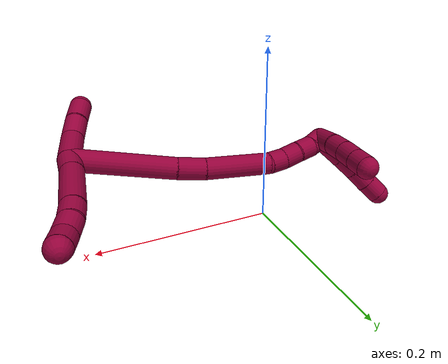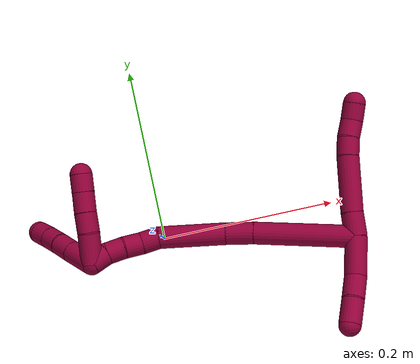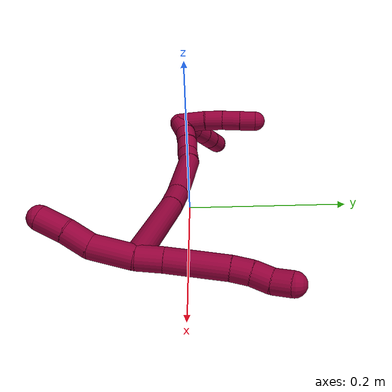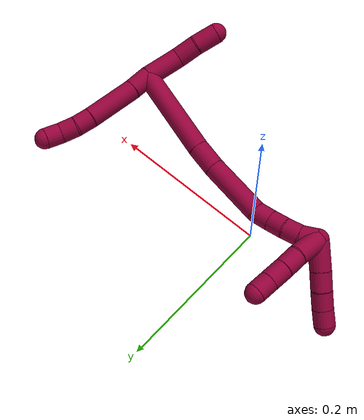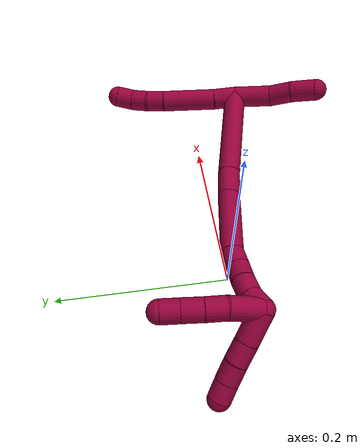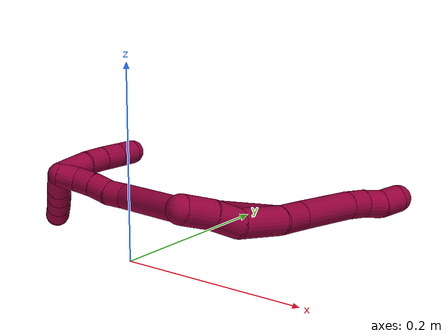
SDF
<sdf version="1.7">
 <world name="default">
  <model name="8">
   <static>0</static>
   <link name="8">
    <collision name="collision-cylinder-e_1_2_8">
     <pose>-3e-06 -0.00117 -0.013253 3.05351 -0.00019 -0.004322</pose>
     <geometry><cylinder><radius>0.0125</radius><length>0.02661</length></cylinder></geometry>
     <surface>
      <friction><ode><mu>1.16</mu><mu2>1.16</mu2><slip1>0</slip1><slip2>0</slip2></ode></friction>
      <contact><ode><kp>1e+06</kp><kd>1</kd><max_vel>0</max_vel><min_depth>0.001</min_depth></ode></contact>
     </surface>
    </collision>
    <visual name="visual-cylinder-e_1_2_8">
     <pose>-3e-06 -0.00117 -0.013253 3.05351 -0.00019 -0.004322</pose>
     <geometry><cylinder><radius>0.0125</radius><length>0.02661</length></cylinder></geometry>
     <material><ambient>0.584314 0 0.227451 1</ambient></material>
    </visual>
    <collision name="collision-cylinder-e_2_8_9">
     <pose>0.002755 -0.005136 -0.057612 3.05198 0.088147 1.55428</pose>
     <geometry><cylinder><radius>0.0125</radius><length>0.062705</length></cylinder></geometry>
     <surface>
      <friction><ode><mu>1.16</mu><mu2>1.16</mu2><slip1>0</slip1><slip2>0</slip2></ode></friction>
      <contact><ode><kp>1e+06</kp><kd>1</kd><max_vel>0</max_vel><min_depth>0.001</min_depth></ode></contact>
     </surface>
    </collision>
    <visual name="visual-cylinder-e_2_8_9">
     <pose>0.002755 -0.005136 -0.057612 3.05198 0.088147 1.55428</pose>
     <geometry><cylinder><radius>0.0125</radius><length>0.062705</length></cylinder></geometry>
     <material><ambient>0.584314 0 0.227451 1</ambient></material>
    </visual>
    <collision name="collision-cylinder-e_3_9_10">
     <pose>0.007319 -0.009412 -0.098617 2.9931 0.178292 1.75349</pose>
     <geometry><cylinder><radius>0.0125</radius><length>0.020341</length></cylinder></geometry>
     <surface>
      <friction><ode><mu>1.16</mu><mu2>1.16</mu2><slip1>0</slip1><slip2>0</slip2></ode></friction>
      <contact><ode><kp>1e+06</kp><kd>1</kd><max_vel>0</max_vel><min_depth>0.001</min_depth></ode></contact>
     </surface>
    </collision>
    <visual name="visual-cylinder-e_3_9_10">
     <pose>0.007319 -0.009412 -0.098617 2.9931 0.178292 1.75349</pose>
     <geometry><cylinder><radius>0.0125</radius><length>0.020341</length></cylinder></geometry>
     <material><ambient>0.584314 0 0.227451 1</ambient></material>
    </visual>
    <collision name="collision-cylinder-e_4_10_11">
     <pose>0.012401 -0.013329 -0.117743 2.8834 0.330955 1.82006</pose>
     <geometry><cylinder><radius>0.0125</radius><length>0.02018</length></cylinder></geometry>
     <surface>
      <friction><ode><mu>1.16</mu><mu2>1.16</mu2><slip1>0</slip1><slip2>0</slip2></ode></friction>
      <contact><ode><kp>1e+06</kp><kd>1</kd><max_vel>0</max_vel><min_depth>0.001</min_depth></ode></contact>
     </surface>
    </collision>
    <visual name="visual-cylinder-e_4_10_11">
     <pose>0.012401 -0.013329 -0.117743 2.8834 0.330955 1.82006</pose>
     <geometry><cylinder><radius>0.0125</radius><length>0.02018</length></cylinder></geometry>
     <material><ambient>0.584314 0 0.227451 1</ambient></material>
    </visual>
    <collision name="collision-cylinder-e_5_11_6">
     <pose>0.01882 -0.015468 -0.136545 -3.1105 0.316658 -2.94749</pose>
     <geometry><cylinder><radius>0.0125</radius><length>0.020163</length></cylinder></geometry>
     <surface>
      <friction><ode><mu>1.16</mu><mu2>1.16</mu2><slip1>0</slip1><slip2>0</slip2></ode></friction>
      <contact><ode><kp>1e+06</kp><kd>1</kd><max_vel>0</max_vel><min_depth>0.001</min_depth></ode></contact>
     </surface>
    </collision>
    <visual name="visual-cylinder-e_5_11_6">
     <pose>0.01882 -0.015468 -0.136545 -3.1105 0.316658 -2.94749</pose>
     <geometry><cylinder><radius>0.0125</radius><length>0.020163</length></cylinder></geometry>
     <material><ambient>0.584314 0 0.227451 1</ambient></material>
    </visual>
    <collision name="collision-cylinder-e_1_2_12">
     <pose>-0.003577 0.003973 0.021495 -0.182792 -0.162205 0.014899</pose>
     <geometry><cylinder><radius>0.0125</radius><length>0.044299</length></cylinder></geometry>
     <surface>
      <friction><ode><mu>1.16</mu><mu2>1.16</mu2><slip1>0</slip1><slip2>0</slip2></ode></friction>
      <contact><ode><kp>1e+06</kp><kd>1</kd><max_vel>0</max_vel><min_depth>0.001</min_depth></ode></contact>
     </surface>
    </collision>
    <visual name="visual-cylinder-e_1_2_12">
     <pose>-0.003577 0.003973 0.021495 -0.182792 -0.162205 0.014899</pose>
     <geometry><cylinder><radius>0.0125</radius><length>0.044299</length></cylinder></geometry>
     <material><ambient>0.584314 0 0.227451 1</ambient></material>
    </visual>
    <collision name="collision-cylinder-e_2_12_13">
     <pose>-0.009874 0.014555 0.054544 -0.519511 -0.201575 0.05374</pose>
     <geometry><cylinder><radius>0.0125</radius><length>0.027171</length></cylinder></geometry>
     <surface>
      <friction><ode><mu>1.16</mu><mu2>1.16</mu2><slip1>0</slip1><slip2>0</slip2></ode></friction>
      <contact><ode><kp>1e+06</kp><kd>1</kd><max_vel>0</max_vel><min_depth>0.001</min_depth></ode></contact>
     </surface>
    </collision>
    <visual name="visual-cylinder-e_2_12_13">
     <pose>-0.009874 0.014555 0.054544 -0.519511 -0.201575 0.05374</pose>
     <geometry><cylinder><radius>0.0125</radius><length>0.027171</length></cylinder></geometry>
     <material><ambient>0.584314 0 0.227451 1</ambient></material>
    </visual>
    <collision name="collision-cylinder-e_3_13_5">
     <pose>-0.016062 0.026323 0.078937 -0.382113 -0.245591 0.047732</pose>
     <geometry><cylinder><radius>0.0125</radius><length>0.028529</length></cylinder></geometry>
     <surface>
      <friction><ode><mu>1.16</mu><mu2>1.16</mu2><slip1>0</slip1><slip2>0</slip2></ode></friction>
      <contact><ode><kp>1e+06</kp><kd>1</kd><max_vel>0</max_vel><min_depth>0.001</min_depth></ode></contact>
     </surface>
    </collision>
    <visual name="visual-cylinder-e_3_13_5">
     <pose>-0.016062 0.026323 0.078937 -0.382113 -0.245591 0.047732</pose>
     <geometry><cylinder><radius>0.0125</radius><length>0.028529</length></cylinder></geometry>
     <material><ambient>0.584314 0 0.227451 1</ambient></material>
    </visual>
    <collision name="collision-cylinder-e_1_2_14">
     <pose>-0.055003 0.002583 -0.011063 -2.91224 -1.36712 2.86065</pose>
     <geometry><cylinder><radius>0.0125</radius><length>0.112329</length></cylinder></geometry>
     <surface>
      <friction><ode><mu>1.16</mu><mu2>1.16</mu2><slip1>0</slip1><slip2>0</slip2></ode></friction>
      <contact><ode><kp>1e+06</kp><kd>1</kd><max_vel>0</max_vel><min_depth>0.001</min_depth></ode></contact>
     </surface>
    </collision>
    <visual name="visual-cylinder-e_1_2_14">
     <pose>-0.055003 0.002583 -0.011063 -2.91224 -1.36712 2.86065</pose>
     <geometry><cylinder><radius>0.0125</radius><length>0.112329</length></cylinder></geometry>
     <material><ambient>0.584314 0 0.227451 1</ambient></material>
    </visual>
    <collision name="collision-cylinder-e_2_14_15">
     <pose>-0.125644 0.006556 -0.024359 -2.58467 -1.40413 2.48971</pose>
     <geometry><cylinder><radius>0.0125</radius><length>0.031713</length></cylinder></geometry>
     <surface>
      <friction><ode><mu>1.16</mu><mu2>1.16</mu2><slip1>0</slip1><slip2>0</slip2></ode></friction>
      <contact><ode><kp>1e+06</kp><kd>1</kd><max_vel>0</max_vel><min_depth>0.001</min_depth></ode></contact>
     </surface>
    </collision>
    <visual name="visual-cylinder-e_2_14_15">
     <pose>-0.125644 0.006556 -0.024359 -2.58467 -1.40413 2.48971</pose>
     <geometry><cylinder><radius>0.0125</radius><length>0.031713</length></cylinder></geometry>
     <material><ambient>0.584314 0 0.227451 1</ambient></material>
    </visual>
    <collision name="collision-cylinder-e_3_15_16">
     <pose>-0.177961 0.01482 -0.030519 -2.08982 -1.35825 1.89483</pose>
     <geometry><cylinder><radius>0.0125</radius><length>0.075049</length></cylinder></geometry>
     <surface>
      <friction><ode><mu>1.16</mu><mu2>1.16</mu2><slip1>0</slip1><slip2>0</slip2></ode></friction>
      <contact><ode><kp>1e+06</kp><kd>1</kd><max_vel>0</max_vel><min_depth>0.001</min_depth></ode></contact>
     </surface>
    </collision>
    <visual name="visual-cylinder-e_3_15_16">
     <pose>-0.177961 0.01482 -0.030519 -2.08982 -1.35825 1.89483</pose>
     <geometry><cylinder><radius>0.0125</radius><length>0.075049</length></cylinder></geometry>
     <material><ambient>0.584314 0 0.227451 1</ambient></material>
    </visual>
    <collision name="collision-cylinder-e_4_16_17">
     <pose>-0.224265 0.024307 -0.03287 -1.02829 -1.26374 0.784066</pose>
     <geometry><cylinder><radius>0.0125</radius><length>0.020192</length></cylinder></geometry>
     <surface>
      <friction><ode><mu>1.16</mu><mu2>1.16</mu2><slip1>0</slip1><slip2>0</slip2></ode></friction>
      <contact><ode><kp>1e+06</kp><kd>1</kd><max_vel>0</max_vel><min_depth>0.001</min_depth></ode></contact>
     </surface>
    </collision>
    <visual name="visual-cylinder-e_4_16_17">
     <pose>-0.224265 0.024307 -0.03287 -1.02829 -1.26374 0.784066</pose>
     <geometry><cylinder><radius>0.0125</radius><length>0.020192</length></cylinder></geometry>
     <material><ambient>0.584314 0 0.227451 1</ambient></material>
    </visual>
    <collision name="collision-cylinder-e_5_17_18">
     <pose>-0.243064 0.031504 -0.030477 -1.39424 -1.10115 0.949664</pose>
     <geometry><cylinder><radius>0.0125</radius><length>0.020579</length></cylinder></geometry>
     <surface>
      <friction><ode><mu>1.16</mu><mu2>1.16</mu2><slip1>0</slip1><slip2>0</slip2></ode></friction>
      <contact><ode><kp>1e+06</kp><kd>1</kd><max_vel>0</max_vel><min_depth>0.001</min_depth></ode></contact>
     </surface>
    </collision>
    <visual name="visual-cylinder-e_5_17_18">
     <pose>-0.243064 0.031504 -0.030477 -1.39424 -1.10115 0.949664</pose>
     <geometry><cylinder><radius>0.0125</radius><length>0.020579</length></cylinder></geometry>
     <material><ambient>0.584314 0 0.227451 1</ambient></material>
    </visual>
    <collision name="collision-cylinder-e_6_18_19">
     <pose>-0.261407 0.039781 -0.027899 -1.12601 -1.15113 0.777365</pose>
     <geometry><cylinder><radius>0.0125</radius><length>0.020077</length></cylinder></geometry>
     <surface>
      <friction><ode><mu>1.16</mu><mu2>1.16</mu2><slip1>0</slip1><slip2>0</slip2></ode></friction>
      <contact><ode><kp>1e+06</kp><kd>1</kd><max_vel>0</max_vel><min_depth>0.001</min_depth></ode></contact>
     </surface>
    </collision>
    <visual name="visual-cylinder-e_6_18_19">
     <pose>-0.261407 0.039781 -0.027899 -1.12601 -1.15113 0.777365</pose>
     <geometry><cylinder><radius>0.0125</radius><length>0.020077</length></cylinder></geometry>
     <material><ambient>0.584314 0 0.227451 1</ambient></material>
    </visual>
    <collision name="collision-cylinder-e_7_19_1">
     <pose>-0.278761 0.047443 -0.021916 -0.754542 -0.954785 0.404362</pose>
     <geometry><cylinder><radius>0.0125</radius><length>0.020061</length></cylinder></geometry>
     <surface>
      <friction><ode><mu>1.16</mu><mu2>1.16</mu2><slip1>0</slip1><slip2>0</slip2></ode></friction>
      <contact><ode><kp>1e+06</kp><kd>1</kd><max_vel>0</max_vel><min_depth>0.001</min_depth></ode></contact>
     </surface>
    </collision>
    <visual name="visual-cylinder-e_7_19_1">
     <pose>-0.278761 0.047443 -0.021916 -0.754542 -0.954785 0.404362</pose>
     <geometry><cylinder><radius>0.0125</radius><length>0.020061</length></cylinder></geometry>
     <material><ambient>0.584314 0 0.227451 1</ambient></material>
    </visual>
    <collision name="collision-cylinder-e_1_1_20">
     <pose>-0.285345 0.053682 -0.034744 -3.00925 0.092924 -1.22365</pose>
     <geometry><cylinder><radius>0.0125</radius><length>0.034551</length></cylinder></geometry>
     <surface>
      <friction><ode><mu>1.16</mu><mu2>1.16</mu2><slip1>0</slip1><slip2>0</slip2></ode></friction>
      <contact><ode><kp>1e+06</kp><kd>1</kd><max_vel>0</max_vel><min_depth>0.001</min_depth></ode></contact>
     </surface>
    </collision>
    <visual name="visual-cylinder-e_1_1_20">
     <pose>-0.285345 0.053682 -0.034744 -3.00925 0.092924 -1.22365</pose>
     <geometry><cylinder><radius>0.0125</radius><length>0.034551</length></cylinder></geometry>
     <material><ambient>0.584314 0 0.227451 1</ambient></material>
    </visual>
    <collision name="collision-cylinder-e_2_20_21">
     <pose>-0.283689 0.056154 -0.063085 -3.12367 0.004639 -0.506581</pose>
     <geometry><cylinder><radius>0.0125</radius><length>0.022585</length></cylinder></geometry>
     <surface>
      <friction><ode><mu>1.16</mu><mu2>1.16</mu2><slip1>0</slip1><slip2>0</slip2></ode></friction>
      <contact><ode><kp>1e+06</kp><kd>1</kd><max_vel>0</max_vel><min_depth>0.001</min_depth></ode></contact>
     </surface>
    </collision>
    <visual name="visual-cylinder-e_2_20_21">
     <pose>-0.283689 0.056154 -0.063085 -3.12367 0.004639 -0.506581</pose>
     <geometry><cylinder><radius>0.0125</radius><length>0.022585</length></cylinder></geometry>
     <material><ambient>0.584314 0 0.227451 1</ambient></material>
    </visual>
    <collision name="collision-cylinder-e_3_21_22">
     <pose>-0.283138 0.056094 -0.08575 3.11851 0.043779 2.1713</pose>
     <geometry><cylinder><radius>0.0125</radius><length>0.022777</length></cylinder></geometry>
     <surface>
      <friction><ode><mu>1.16</mu><mu2>1.16</mu2><slip1>0</slip1><slip2>0</slip2></ode></friction>
      <contact><ode><kp>1e+06</kp><kd>1</kd><max_vel>0</max_vel><min_depth>0.001</min_depth></ode></contact>
     </surface>
    </collision>
    <visual name="visual-cylinder-e_3_21_22">
     <pose>-0.283138 0.056094 -0.08575 3.11851 0.043779 2.1713</pose>
     <geometry><cylinder><radius>0.0125</radius><length>0.022777</length></cylinder></geometry>
     <material><ambient>0.584314 0 0.227451 1</ambient></material>
    </visual>
    <collision name="collision-cylinder-e_4_22_4">
     <pose>-0.282287 0.055672 -0.107161 3.12574 0.035122 2.29387</pose>
     <geometry><cylinder><radius>0.0125</radius><length>0.020088</length></cylinder></geometry>
     <surface>
      <friction><ode><mu>1.16</mu><mu2>1.16</mu2><slip1>0</slip1><slip2>0</slip2></ode></friction>
      <contact><ode><kp>1e+06</kp><kd>1</kd><max_vel>0</max_vel><min_depth>0.001</min_depth></ode></contact>
     </surface>
    </collision>
    <visual name="visual-cylinder-e_4_22_4">
     <pose>-0.282287 0.055672 -0.107161 3.12574 0.035122 2.29387</pose>
     <geometry><cylinder><radius>0.0125</radius><length>0.020088</length></cylinder></geometry>
     <material><ambient>0.584314 0 0.227451 1</ambient></material>
    </visual>
    <collision name="collision-cylinder-e_1_1_23">
     <pose>-0.30002 0.04294 -0.026163 2.35602 -0.829013 -1.63091</pose>
     <geometry><cylinder><radius>0.0125</radius><length>0.035462</length></cylinder></geometry>
     <surface>
      <friction><ode><mu>1.16</mu><mu2>1.16</mu2><slip1>0</slip1><slip2>0</slip2></ode></friction>
      <contact><ode><kp>1e+06</kp><kd>1</kd><max_vel>0</max_vel><min_depth>0.001</min_depth></ode></contact>
     </surface>
    </collision>
    <visual name="visual-cylinder-e_1_1_23">
     <pose>-0.30002 0.04294 -0.026163 2.35602 -0.829013 -1.63091</pose>
     <geometry><cylinder><radius>0.0125</radius><length>0.035462</length></cylinder></geometry>
     <material><ambient>0.584314 0 0.227451 1</ambient></material>
    </visual>
    <collision name="collision-cylinder-e_2_23_24">
     <pose>-0.321428 0.028865 -0.040278 2.36002 -0.808808 -1.60894</pose>
     <geometry><cylinder><radius>0.0125</radius><length>0.023044</length></cylinder></geometry>
     <surface>
      <friction><ode><mu>1.16</mu><mu2>1.16</mu2><slip1>0</slip1><slip2>0</slip2></ode></friction>
      <contact><ode><kp>1e+06</kp><kd>1</kd><max_vel>0</max_vel><min_depth>0.001</min_depth></ode></contact>
     </surface>
    </collision>
    <visual name="visual-cylinder-e_2_23_24">
     <pose>-0.321428 0.028865 -0.040278 2.36002 -0.808808 -1.60894</pose>
     <geometry><cylinder><radius>0.0125</radius><length>0.023044</length></cylinder></geometry>
     <material><ambient>0.584314 0 0.227451 1</ambient></material>
    </visual>
    <collision name="collision-cylinder-e_3_24_25">
     <pose>-0.337367 0.017498 -0.050609 2.25323 -0.797017 -1.44862</pose>
     <geometry><cylinder><radius>0.0125</radius><length>0.021259</length></cylinder></geometry>
     <surface>
      <friction><ode><mu>1.16</mu><mu2>1.16</mu2><slip1>0</slip1><slip2>0</slip2></ode></friction>
      <contact><ode><kp>1e+06</kp><kd>1</kd><max_vel>0</max_vel><min_depth>0.001</min_depth></ode></contact>
     </surface>
    </collision>
    <visual name="visual-cylinder-e_3_24_25">
     <pose>-0.337367 0.017498 -0.050609 2.25323 -0.797017 -1.44862</pose>
     <geometry><cylinder><radius>0.0125</radius><length>0.021259</length></cylinder></geometry>
     <material><ambient>0.584314 0 0.227451 1</ambient></material>
    </visual>
    <collision name="collision-cylinder-e_4_25_3">
     <pose>-0.352492 0.006486 -0.059566 2.25412 -0.83824 -1.50601</pose>
     <geometry><cylinder><radius>0.0125</radius><length>0.020235</length></cylinder></geometry>
     <surface>
      <friction><ode><mu>1.16</mu><mu2>1.16</mu2><slip1>0</slip1><slip2>0</slip2></ode></friction>
      <contact><ode><kp>1e+06</kp><kd>1</kd><max_vel>0</max_vel><min_depth>0.001</min_depth></ode></contact>
     </surface>
    </collision>
    <visual name="visual-cylinder-e_4_25_3">
     <pose>-0.352492 0.006486 -0.059566 2.25412 -0.83824 -1.50601</pose>
     <geometry><cylinder><radius>0.0125</radius><length>0.020235</length></cylinder></geometry>
     <material><ambient>0.584314 0 0.227451 1</ambient></material>
    </visual>
    <collision name="collision-sphere-3">
     <pose>-0.360014 0.001239 -0.063838 0 -0 0</pose>
     <geometry><sphere><radius>0.0125</radius></sphere></geometry>
     <surface>
      <friction><ode><mu>1.16</mu><mu2>1.16</mu2><slip1>0</slip1><slip2>0</slip2></ode></friction>
      <contact><ode><kp>1e+06</kp><kd>1</kd><max_vel>0</max_vel><min_depth>0.001</min_depth></ode></contact>
     </surface>
    </collision>
    <visual name="visual-sphere-3">
     <pose>-0.360014 0.001239 -0.063838 0 -0 0</pose>
     <geometry><sphere><radius>0.0125</radius></sphere></geometry>
     <material><ambient>0.584314 0 0.227451 1</ambient></material>
    </visual>
    <collision name="collision-sphere-25">
     <pose>-0.34497 0.011733 -0.055294 0 -0 0</pose>
     <geometry><sphere><radius>0.0125</radius></sphere></geometry>
     <surface>
      <friction><ode><mu>1.16</mu><mu2>1.16</mu2><slip1>0</slip1><slip2>0</slip2></ode></friction>
      <contact><ode><kp>1e+06</kp><kd>1</kd><max_vel>0</max_vel><min_depth>0.001</min_depth></ode></contact>
     </surface>
    </collision>
    <visual name="visual-sphere-25">
     <pose>-0.34497 0.011733 -0.055294 0 -0 0</pose>
     <geometry><sphere><radius>0.0125</radius></sphere></geometry>
     <material><ambient>0.584314 0 0.227451 1</ambient></material>
    </visual>
    <collision name="collision-sphere-24">
     <pose>-0.329764 0.023263 -0.045924 0 -0 0</pose>
     <geometry><sphere><radius>0.0125</radius></sphere></geometry>
     <surface>
      <friction><ode><mu>1.16</mu><mu2>1.16</mu2><slip1>0</slip1><slip2>0</slip2></ode></friction>
      <contact><ode><kp>1e+06</kp><kd>1</kd><max_vel>0</max_vel><min_depth>0.001</min_depth></ode></contact>
     </surface>
    </collision>
    <visual name="visual-sphere-24">
     <pose>-0.329764 0.023263 -0.045924 0 -0 0</pose>
     <geometry><sphere><radius>0.0125</radius></sphere></geometry>
     <material><ambient>0.584314 0 0.227451 1</ambient></material>
    </visual>
    <collision name="collision-sphere-23">
     <pose>-0.313093 0.034468 -0.034632 0 -0 0</pose>
     <geometry><sphere><radius>0.0125</radius></sphere></geometry>
     <surface>
      <friction><ode><mu>1.16</mu><mu2>1.16</mu2><slip1>0</slip1><slip2>0</slip2></ode></friction>
      <contact><ode><kp>1e+06</kp><kd>1</kd><max_vel>0</max_vel><min_depth>0.001</min_depth></ode></contact>
     </surface>
    </collision>
    <visual name="visual-sphere-23">
     <pose>-0.313093 0.034468 -0.034632 0 -0 0</pose>
     <geometry><sphere><radius>0.0125</radius></sphere></geometry>
     <material><ambient>0.584314 0 0.227451 1</ambient></material>
    </visual>
    <collision name="collision-sphere-4">
     <pose>-0.281935 0.055513 -0.117197 0 -0 0</pose>
     <geometry><sphere><radius>0.0125</radius></sphere></geometry>
     <surface>
      <friction><ode><mu>1.16</mu><mu2>1.16</mu2><slip1>0</slip1><slip2>0</slip2></ode></friction>
      <contact><ode><kp>1e+06</kp><kd>1</kd><max_vel>0</max_vel><min_depth>0.001</min_depth></ode></contact>
     </surface>
    </collision>
    <visual name="visual-sphere-4">
     <pose>-0.281935 0.055513 -0.117197 0 -0 0</pose>
     <geometry><sphere><radius>0.0125</radius></sphere></geometry>
     <material><ambient>0.584314 0 0.227451 1</ambient></material>
    </visual>
    <collision name="collision-sphere-22">
     <pose>-0.28264 0.055832 -0.097125 0 -0 0</pose>
     <geometry><sphere><radius>0.0125</radius></sphere></geometry>
     <surface>
      <friction><ode><mu>1.16</mu><mu2>1.16</mu2><slip1>0</slip1><slip2>0</slip2></ode></friction>
      <contact><ode><kp>1e+06</kp><kd>1</kd><max_vel>0</max_vel><min_depth>0.001</min_depth></ode></contact>
     </surface>
    </collision>
    <visual name="visual-sphere-22">
     <pose>-0.28264 0.055832 -0.097125 0 -0 0</pose>
     <geometry><sphere><radius>0.0125</radius></sphere></geometry>
     <material><ambient>0.584314 0 0.227451 1</ambient></material>
    </visual>
    <collision name="collision-sphere-21">
     <pose>-0.283637 0.056357 -0.074376 0 -0 0</pose>
     <geometry><sphere><radius>0.0125</radius></sphere></geometry>
     <surface>
      <friction><ode><mu>1.16</mu><mu2>1.16</mu2><slip1>0</slip1><slip2>0</slip2></ode></friction>
      <contact><ode><kp>1e+06</kp><kd>1</kd><max_vel>0</max_vel><min_depth>0.001</min_depth></ode></contact>
     </surface>
    </collision>
    <visual name="visual-sphere-21">
     <pose>-0.283637 0.056357 -0.074376 0 -0 0</pose>
     <geometry><sphere><radius>0.0125</radius></sphere></geometry>
     <material><ambient>0.584314 0 0.227451 1</ambient></material>
    </visual>
    <collision name="collision-sphere-20">
     <pose>-0.283742 0.055952 -0.051795 0 -0 0</pose>
     <geometry><sphere><radius>0.0125</radius></sphere></geometry>
     <surface>
      <friction><ode><mu>1.16</mu><mu2>1.16</mu2><slip1>0</slip1><slip2>0</slip2></ode></friction>
      <contact><ode><kp>1e+06</kp><kd>1</kd><max_vel>0</max_vel><min_depth>0.001</min_depth></ode></contact>
     </surface>
    </collision>
    <visual name="visual-sphere-20">
     <pose>-0.283742 0.055952 -0.051795 0 -0 0</pose>
     <geometry><sphere><radius>0.0125</radius></sphere></geometry>
     <material><ambient>0.584314 0 0.227451 1</ambient></material>
    </visual>
    <collision name="collision-sphere-6">
     <pose>0.021959 -0.01517 -0.14612 0 -0 0</pose>
     <geometry><sphere><radius>0.0125</radius></sphere></geometry>
     <surface>
      <friction><ode><mu>1.16</mu><mu2>1.16</mu2><slip1>0</slip1><slip2>0</slip2></ode></friction>
      <contact><ode><kp>1e+06</kp><kd>1</kd><max_vel>0</max_vel><min_depth>0.001</min_depth></ode></contact>
     </surface>
    </collision>
    <visual name="visual-sphere-6">
     <pose>0.021959 -0.01517 -0.14612 0 -0 0</pose>
     <geometry><sphere><radius>0.0125</radius></sphere></geometry>
     <material><ambient>0.584314 0 0.227451 1</ambient></material>
    </visual>
    <collision name="collision-sphere-11">
     <pose>0.01568 -0.015765 -0.126969 0 -0 0</pose>
     <geometry><sphere><radius>0.0125</radius></sphere></geometry>
     <surface>
      <friction><ode><mu>1.16</mu><mu2>1.16</mu2><slip1>0</slip1><slip2>0</slip2></ode></friction>
      <contact><ode><kp>1e+06</kp><kd>1</kd><max_vel>0</max_vel><min_depth>0.001</min_depth></ode></contact>
     </surface>
    </collision>
    <visual name="visual-sphere-11">
     <pose>0.01568 -0.015765 -0.126969 0 -0 0</pose>
     <geometry><sphere><radius>0.0125</radius></sphere></geometry>
     <material><ambient>0.584314 0 0.227451 1</ambient></material>
    </visual>
    <collision name="collision-sphere-10">
     <pose>0.009123 -0.010892 -0.108516 0 -0 0</pose>
     <geometry><sphere><radius>0.0125</radius></sphere></geometry>
     <surface>
      <friction><ode><mu>1.16</mu><mu2>1.16</mu2><slip1>0</slip1><slip2>0</slip2></ode></friction>
      <contact><ode><kp>1e+06</kp><kd>1</kd><max_vel>0</max_vel><min_depth>0.001</min_depth></ode></contact>
     </surface>
    </collision>
    <visual name="visual-sphere-10">
     <pose>0.009123 -0.010892 -0.108516 0 -0 0</pose>
     <geometry><sphere><radius>0.0125</radius></sphere></geometry>
     <material><ambient>0.584314 0 0.227451 1</ambient></material>
    </visual>
    <collision name="collision-sphere-9">
     <pose>0.005515 -0.007931 -0.088718 0 -0 0</pose>
     <geometry><sphere><radius>0.0125</radius></sphere></geometry>
     <surface>
      <friction><ode><mu>1.16</mu><mu2>1.16</mu2><slip1>0</slip1><slip2>0</slip2></ode></friction>
      <contact><ode><kp>1e+06</kp><kd>1</kd><max_vel>0</max_vel><min_depth>0.001</min_depth></ode></contact>
     </surface>
    </collision>
    <visual name="visual-sphere-9">
     <pose>0.005515 -0.007931 -0.088718 0 -0 0</pose>
     <geometry><sphere><radius>0.0125</radius></sphere></geometry>
     <material><ambient>0.584314 0 0.227451 1</ambient></material>
    </visual>
    <collision name="collision-sphere-2">
     <geometry><sphere><radius>0.0125</radius></sphere></geometry>
     <surface>
      <friction><ode><mu>1.16</mu><mu2>1.16</mu2><slip1>0</slip1><slip2>0</slip2></ode></friction>
      <contact><ode><kp>1e+06</kp><kd>1</kd><max_vel>0</max_vel><min_depth>0.001</min_depth></ode></contact>
     </surface>
    </collision>
    <visual name="visual-sphere-2">
     <geometry><sphere><radius>0.0125</radius></sphere></geometry>
     <material><ambient>0.584314 0 0.227451 1</ambient></material>
    </visual>
    <collision name="collision-sphere-19">
     <pose>-0.270574 0.043473 -0.026139 0 -0 0</pose>
     <geometry><sphere><radius>0.0125</radius></sphere></geometry>
     <surface>
      <friction><ode><mu>1.16</mu><mu2>1.16</mu2><slip1>0</slip1><slip2>0</slip2></ode></friction>
      <contact><ode><kp>1e+06</kp><kd>1</kd><max_vel>0</max_vel><min_depth>0.001</min_depth></ode></contact>
     </surface>
    </collision>
    <visual name="visual-sphere-19">
     <pose>-0.270574 0.043473 -0.026139 0 -0 0</pose>
     <geometry><sphere><radius>0.0125</radius></sphere></geometry>
     <material><ambient>0.584314 0 0.227451 1</ambient></material>
    </visual>
    <collision name="collision-sphere-8">
     <pose>-5e-06 -0.002341 -0.026507 0 -0 0</pose>
     <geometry><sphere><radius>0.0125</radius></sphere></geometry>
     <surface>
      <friction><ode><mu>1.16</mu><mu2>1.16</mu2><slip1>0</slip1><slip2>0</slip2></ode></friction>
      <contact><ode><kp>1e+06</kp><kd>1</kd><max_vel>0</max_vel><min_depth>0.001</min_depth></ode></contact>
     </surface>
    </collision>
    <visual name="visual-sphere-8">
     <pose>-5e-06 -0.002341 -0.026507 0 -0 0</pose>
     <geometry><sphere><radius>0.0125</radius></sphere></geometry>
     <material><ambient>0.584314 0 0.227451 1</ambient></material>
    </visual>
    <collision name="collision-sphere-12">
     <pose>-0.007154 0.007947 0.04299 0 -0 0</pose>
     <geometry><sphere><radius>0.0125</radius></sphere></geometry>
     <surface>
      <friction><ode><mu>1.16</mu><mu2>1.16</mu2><slip1>0</slip1><slip2>0</slip2></ode></friction>
      <contact><ode><kp>1e+06</kp><kd>1</kd><max_vel>0</max_vel><min_depth>0.001</min_depth></ode></contact>
     </surface>
    </collision>
    <visual name="visual-sphere-12">
     <pose>-0.007154 0.007947 0.04299 0 -0 0</pose>
     <geometry><sphere><radius>0.0125</radius></sphere></geometry>
     <material><ambient>0.584314 0 0.227451 1</ambient></material>
    </visual>
    <collision name="collision-sphere-13">
     <pose>-0.012594 0.021163 0.066099 0 -0 0</pose>
     <geometry><sphere><radius>0.0125</radius></sphere></geometry>
     <surface>
      <friction><ode><mu>1.16</mu><mu2>1.16</mu2><slip1>0</slip1><slip2>0</slip2></ode></friction>
      <contact><ode><kp>1e+06</kp><kd>1</kd><max_vel>0</max_vel><min_depth>0.001</min_depth></ode></contact>
     </surface>
    </collision>
    <visual name="visual-sphere-13">
     <pose>-0.012594 0.021163 0.066099 0 -0 0</pose>
     <geometry><sphere><radius>0.0125</radius></sphere></geometry>
     <material><ambient>0.584314 0 0.227451 1</ambient></material>
    </visual>
    <collision name="collision-sphere-5">
     <pose>-0.01953 0.031482 0.091776 0 -0 0</pose>
     <geometry><sphere><radius>0.0125</radius></sphere></geometry>
     <surface>
      <friction><ode><mu>1.16</mu><mu2>1.16</mu2><slip1>0</slip1><slip2>0</slip2></ode></friction>
      <contact><ode><kp>1e+06</kp><kd>1</kd><max_vel>0</max_vel><min_depth>0.001</min_depth></ode></contact>
     </surface>
    </collision>
    <visual name="visual-sphere-5">
     <pose>-0.01953 0.031482 0.091776 0 -0 0</pose>
     <geometry><sphere><radius>0.0125</radius></sphere></geometry>
     <material><ambient>0.584314 0 0.227451 1</ambient></material>
    </visual>
    <collision name="collision-sphere-14">
     <pose>-0.110007 0.005166 -0.022126 0 -0 0</pose>
     <geometry><sphere><radius>0.0125</radius></sphere></geometry>
     <surface>
      <friction><ode><mu>1.16</mu><mu2>1.16</mu2><slip1>0</slip1><slip2>0</slip2></ode></friction>
      <contact><ode><kp>1e+06</kp><kd>1</kd><max_vel>0</max_vel><min_depth>0.001</min_depth></ode></contact>
     </surface>
    </collision>
    <visual name="visual-sphere-14">
     <pose>-0.110007 0.005166 -0.022126 0 -0 0</pose>
     <geometry><sphere><radius>0.0125</radius></sphere></geometry>
     <material><ambient>0.584314 0 0.227451 1</ambient></material>
    </visual>
    <collision name="collision-sphere-15">
     <pose>-0.141281 0.007946 -0.026592 0 -0 0</pose>
     <geometry><sphere><radius>0.0125</radius></sphere></geometry>
     <surface>
      <friction><ode><mu>1.16</mu><mu2>1.16</mu2><slip1>0</slip1><slip2>0</slip2></ode></friction>
      <contact><ode><kp>1e+06</kp><kd>1</kd><max_vel>0</max_vel><min_depth>0.001</min_depth></ode></contact>
     </surface>
    </collision>
    <visual name="visual-sphere-15">
     <pose>-0.141281 0.007946 -0.026592 0 -0 0</pose>
     <geometry><sphere><radius>0.0125</radius></sphere></geometry>
     <material><ambient>0.584314 0 0.227451 1</ambient></material>
    </visual>
    <collision name="collision-sphere-16">
     <pose>-0.214641 0.021693 -0.034445 0 -0 0</pose>
     <geometry><sphere><radius>0.0125</radius></sphere></geometry>
     <surface>
      <friction><ode><mu>1.16</mu><mu2>1.16</mu2><slip1>0</slip1><slip2>0</slip2></ode></friction>
      <contact><ode><kp>1e+06</kp><kd>1</kd><max_vel>0</max_vel><min_depth>0.001</min_depth></ode></contact>
     </surface>
    </collision>
    <visual name="visual-sphere-16">
     <pose>-0.214641 0.021693 -0.034445 0 -0 0</pose>
     <geometry><sphere><radius>0.0125</radius></sphere></geometry>
     <material><ambient>0.584314 0 0.227451 1</ambient></material>
    </visual>
    <collision name="collision-sphere-17">
     <pose>-0.233888 0.02692 -0.031294 0 -0 0</pose>
     <geometry><sphere><radius>0.0125</radius></sphere></geometry>
     <surface>
      <friction><ode><mu>1.16</mu><mu2>1.16</mu2><slip1>0</slip1><slip2>0</slip2></ode></friction>
      <contact><ode><kp>1e+06</kp><kd>1</kd><max_vel>0</max_vel><min_depth>0.001</min_depth></ode></contact>
     </surface>
    </collision>
    <visual name="visual-sphere-17">
     <pose>-0.233888 0.02692 -0.031294 0 -0 0</pose>
     <geometry><sphere><radius>0.0125</radius></sphere></geometry>
     <material><ambient>0.584314 0 0.227451 1</ambient></material>
    </visual>
    <collision name="collision-sphere-18">
     <pose>-0.252239 0.036089 -0.029659 0 -0 0</pose>
     <geometry><sphere><radius>0.0125</radius></sphere></geometry>
     <surface>
      <friction><ode><mu>1.16</mu><mu2>1.16</mu2><slip1>0</slip1><slip2>0</slip2></ode></friction>
      <contact><ode><kp>1e+06</kp><kd>1</kd><max_vel>0</max_vel><min_depth>0.001</min_depth></ode></contact>
     </surface>
    </collision>
    <visual name="visual-sphere-18">
     <pose>-0.252239 0.036089 -0.029659 0 -0 0</pose>
     <geometry><sphere><radius>0.0125</radius></sphere></geometry>
     <material><ambient>0.584314 0 0.227451 1</ambient></material>
    </visual>
    <collision name="collision-sphere-1">
     <pose>-0.286948 0.051413 -0.017694 0 -0 0</pose>
     <geometry><sphere><radius>0.0125</radius></sphere></geometry>
     <surface>
      <friction><ode><mu>1.16</mu><mu2>1.16</mu2><slip1>0</slip1><slip2>0</slip2></ode></friction>
      <contact><ode><kp>1e+06</kp><kd>1</kd><max_vel>0</max_vel><min_depth>0.001</min_depth></ode></contact>
     </surface>
    </collision>
    <visual name="visual-sphere-1">
     <pose>-0.286948 0.051413 -0.017694 0 -0 0</pose>
     <geometry><sphere><radius>0.0125</radius></sphere></geometry>
     <material><ambient>0.584314 0 0.227451 1</ambient></material>
    </visual>
    <inertial>
     <pose>-0.139413 0.017209 -0.031838 0 -0 0</pose>
     <mass>0.75</mass>
     <inertia><ixx>-3e-06</ixx><ixy>0</ixy><ixz>0</ixz><iyy>0.00022</iyy><iyz>0</iyz><izz>0.000144</izz></inertia>
    </inertial>
   </link>
   <pose>0.207058 -0.044394 0.092929 1.5798 -0.227238 -0.053062</pose>
  </model>
 </world>
</sdf>
